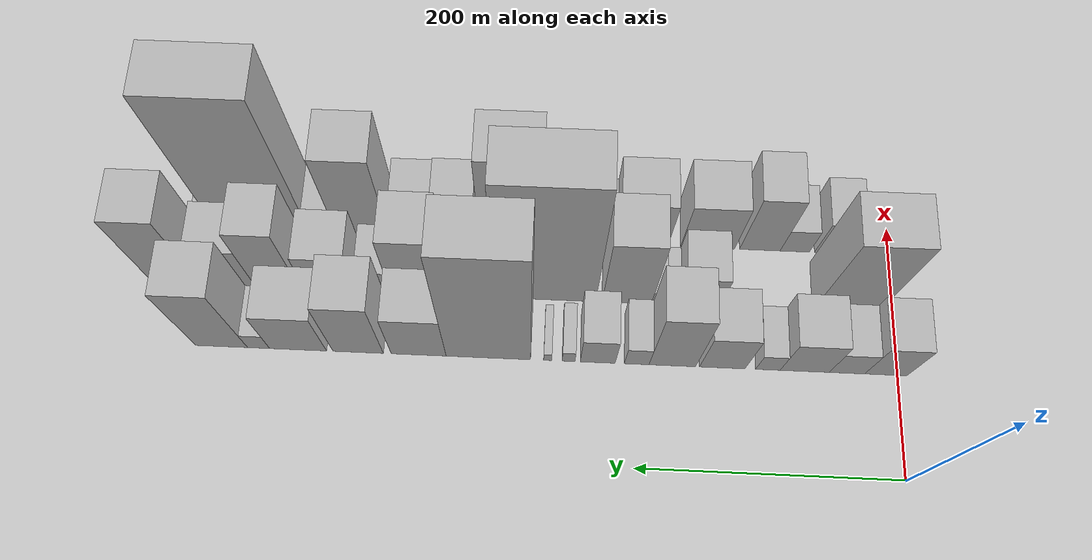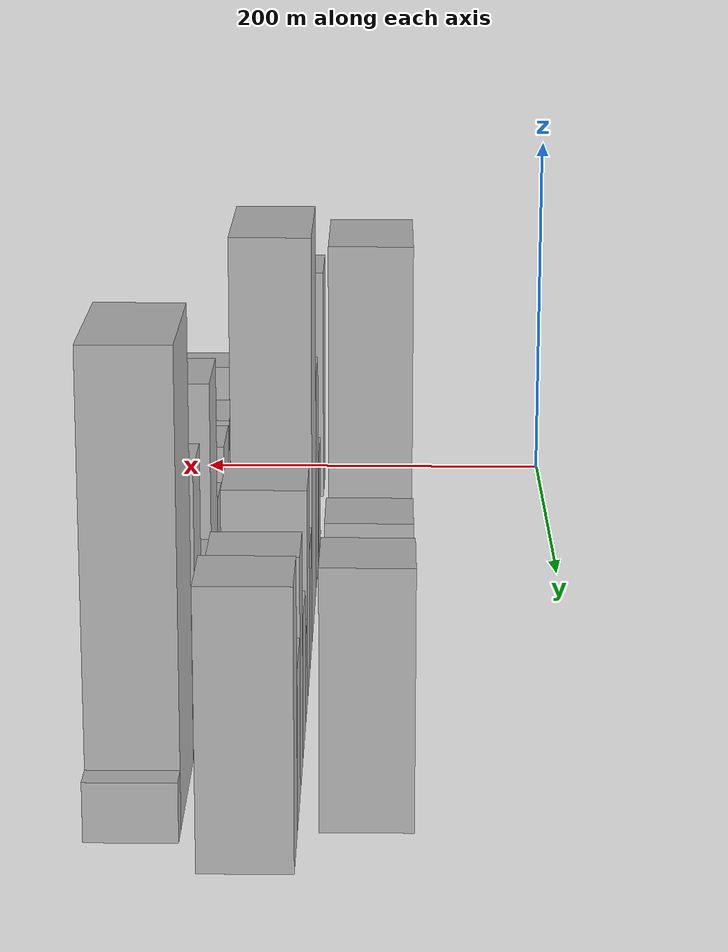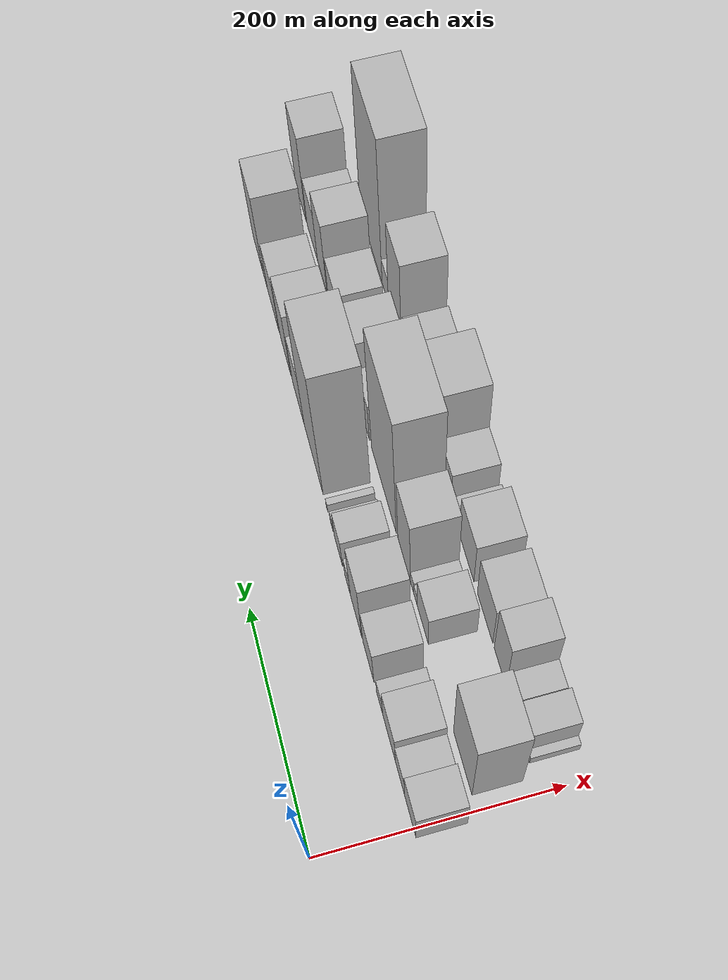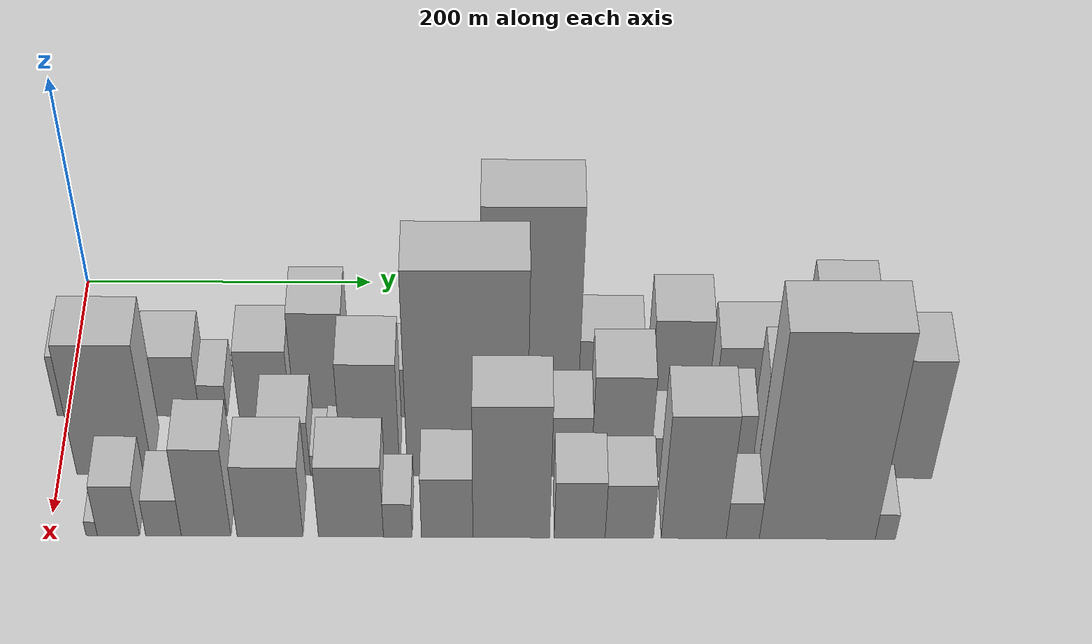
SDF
<sdf version="1.6">
 <world name="default">
  <model name="building_15">
   <static>1</static>
   <pose>100.0000 9.0524 0 0.000000 0.000000 0.000000</pose>
   <link name="link">
    <pose>0 0 31.50 0 0 0</pose>
    <collision name="collision"><geometry><box><size>40.0000 32.1481 63.0000</size></box></geometry></collision>
    <visual name="visual">
     <cast_shadows>0</cast_shadows>
     <geometry><box><size>40.0000 32.1481 63.0000</size></box></geometry>
     <material>
      <script>
       <uri>model://HANNAS_wall/materials/scripts</uri>
       <uri>model://HANNAS_wall/materials/textures</uri>
       <name>vrc/HANNAS_wall</name>
      </script>
     </material>
    </visual>
   </link>
  </model>
  <model name="building_16">
   <static>1</static>
   <pose>100.0000 38.5215 0 0.000000 0.000000 0.000000</pose>
   <link name="link">
    <pose>0 0 22.50 0 0 0</pose>
    <collision name="collision"><geometry><box><size>40.0000 26.7901 45.0000</size></box></geometry></collision>
    <visual name="visual">
     <cast_shadows>0</cast_shadows>
     <geometry><box><size>40.0000 26.7901 45.0000</size></box></geometry>
     <material>
      <script>
       <uri>model://HANNAS_wall/materials/scripts</uri>
       <uri>model://HANNAS_wall/materials/textures</uri>
       <name>vrc/HANNAS_wall</name>
      </script>
     </material>
    </visual>
   </link>
  </model>
  <model name="building_17">
   <static>1</static>
   <pose>100.0000 70.6206 0 0.000000 0.000000 0.000000</pose>
   <link name="link">
    <pose>0 0 31.50 0 0 0</pose>
    <collision name="collision"><geometry><box><size>40.0000 37.4082 63.0000</size></box></geometry></collision>
    <visual name="visual">
     <cast_shadows>0</cast_shadows>
     <geometry><box><size>40.0000 37.4082 63.0000</size></box></geometry>
     <material>
      <script>
       <uri>model://HANNAS_wall/materials/scripts</uri>
       <uri>model://HANNAS_wall/materials/textures</uri>
       <name>vrc/HANNAS_wall</name>
      </script>
     </material>
    </visual>
   </link>
  </model>
  <model name="building_18">
   <static>1</static>
   <pose>100.0000 98.6573 0 0.000000 0.000000 0.000000</pose>
   <link name="link">
    <pose>0 0 16.50 0 0 0</pose>
    <collision name="collision"><geometry><box><size>40.0000 18.6651 33.0000</size></box></geometry></collision>
    <visual name="visual">
     <cast_shadows>0</cast_shadows>
     <geometry><box><size>40.0000 18.6651 33.0000</size></box></geometry>
     <material>
      <script>
       <uri>model://HANNAS_wall/materials/scripts</uri>
       <uri>model://HANNAS_wall/materials/textures</uri>
       <name>vrc/HANNAS_wall</name>
      </script>
     </material>
    </visual>
   </link>
  </model>
  <model name="building_19">
   <static>1</static>
   <pose>100.0000 133.3318 0 0.000000 0.000000 0.000000</pose>
   <link name="link">
    <pose>0 0 34.50 0 0 0</pose>
    <collision name="collision"><geometry><box><size>40.0000 34.6839 69.0000</size></box></geometry></collision>
    <visual name="visual">
     <cast_shadows>0</cast_shadows>
     <geometry><box><size>40.0000 34.6839 69.0000</size></box></geometry>
     <material>
      <script>
       <uri>model://HANNAS_wall/materials/scripts</uri>
       <uri>model://HANNAS_wall/materials/textures</uri>
       <name>vrc/HANNAS_wall</name>
      </script>
     </material>
    </visual>
   </link>
  </model>
  <model name="building_20">
   <static>1</static>
   <pose>100.0000 171.4548 0 0.000000 0.000000 0.000000</pose>
   <link name="link">
    <pose>0 0 54.00 0 0 0</pose>
    <collision name="collision"><geometry><box><size>40.0000 35.5620 108.0000</size></box></geometry></collision>
    <visual name="visual">
     <cast_shadows>0</cast_shadows>
     <geometry><box><size>40.0000 35.5620 108.0000</size></box></geometry>
     <material>
      <script>
       <uri>model://HANNAS_wall/materials/scripts</uri>
       <uri>model://HANNAS_wall/materials/textures</uri>
       <name>vrc/HANNAS_wall</name>
      </script>
     </material>
    </visual>
   </link>
  </model>
  <model name="building_21">
   <static>1</static>
   <pose>100.0000 198.6346 0 0.000000 0.000000 0.000000</pose>
   <link name="link">
    <pose>0 0 18.00 0 0 0</pose>
    <collision name="collision"><geometry><box><size>40.0000 18.7976 36.0000</size></box></geometry></collision>
    <visual name="visual">
     <cast_shadows>0</cast_shadows>
     <geometry><box><size>40.0000 18.7976 36.0000</size></box></geometry>
     <material>
      <script>
       <uri>model://HANNAS_wall/materials/scripts</uri>
       <uri>model://HANNAS_wall/materials/textures</uri>
       <name>vrc/HANNAS_wall</name>
      </script>
     </material>
    </visual>
   </link>
  </model>
  <model name="building_22">
   <static>1</static>
   <pose>100.0000 228.3697 0 0.000000 0.000000 0.000000</pose>
   <link name="link">
    <pose>0 0 25.50 0 0 0</pose>
    <collision name="collision"><geometry><box><size>40.0000 26.6725 51.0000</size></box></geometry></collision>
    <visual name="visual">
     <cast_shadows>0</cast_shadows>
     <geometry><box><size>40.0000 26.6725 51.0000</size></box></geometry>
     <material>
      <script>
       <uri>model://HANNAS_wall/materials/scripts</uri>
       <uri>model://HANNAS_wall/materials/textures</uri>
       <name>vrc/HANNAS_wall</name>
      </script>
     </material>
    </visual>
   </link>
  </model>
  <model name="building_23">
   <static>1</static>
   <pose>100.0000 250.6202 0 0.000000 0.000000 0.000000</pose>
   <link name="link">
    <pose>0 0 10.50 0 0 0</pose>
    <collision name="collision"><geometry><box><size>40.0000 9.8286 21.0000</size></box></geometry></collision>
    <visual name="visual">
     <cast_shadows>0</cast_shadows>
     <geometry><box><size>40.0000 9.8286 21.0000</size></box></geometry>
     <material>
      <script>
       <uri>model://HANNAS_wall/materials/scripts</uri>
       <uri>model://HANNAS_wall/materials/textures</uri>
       <name>vrc/HANNAS_wall</name>
      </script>
     </material>
    </visual>
   </link>
  </model>
  <model name="building_24">
   <static>1</static>
   <pose>100.0000 266.6115 0 0.000000 0.000000 0.000000</pose>
   <link name="link">
    <pose>0 0 7.50 0 0 0</pose>
    <collision name="collision"><geometry><box><size>40.0000 6.1540 15.0000</size></box></geometry></collision>
    <visual name="visual">
     <cast_shadows>0</cast_shadows>
     <geometry><box><size>40.0000 6.1540 15.0000</size></box></geometry>
     <material>
      <script>
       <uri>model://HANNAS_wall/materials/scripts</uri>
       <uri>model://HANNAS_wall/materials/textures</uri>
       <name>vrc/HANNAS_wall</name>
      </script>
     </material>
    </visual>
   </link>
  </model>
  <model name="building_25">
   <static>1</static>
   <pose>100.0000 312.0021 0 0.000000 0.000000 0.000000</pose>
   <link name="link">
    <pose>0 0 105.00 0 0 0</pose>
    <collision name="collision"><geometry><box><size>40.0000 64.6272 210.0000</size></box></geometry></collision>
    <visual name="visual">
     <cast_shadows>0</cast_shadows>
     <geometry><box><size>40.0000 64.6272 210.0000</size></box></geometry>
     <material>
      <script>
       <uri>model://HANNAS_wall/materials/scripts</uri>
       <uri>model://HANNAS_wall/materials/textures</uri>
       <name>vrc/HANNAS_wall</name>
      </script>
     </material>
    </visual>
   </link>
  </model>
  <model name="building_26">
   <static>1</static>
   <pose>100.0000 365.3880 0 0.000000 0.000000 0.000000</pose>
   <link name="link">
    <pose>0 0 40.50 0 0 0</pose>
    <collision name="collision"><geometry><box><size>40.0000 42.1446 81.0000</size></box></geometry></collision>
    <visual name="visual">
     <cast_shadows>0</cast_shadows>
     <geometry><box><size>40.0000 42.1446 81.0000</size></box></geometry>
     <material>
      <script>
       <uri>model://HANNAS_wall/materials/scripts</uri>
       <uri>model://HANNAS_wall/materials/textures</uri>
       <name>vrc/HANNAS_wall</name>
      </script>
     </material>
    </visual>
   </link>
  </model>
  <model name="building_27">
   <static>1</static>
   <pose>100.0000 411.8133 0 0.000000 0.000000 0.000000</pose>
   <link name="link">
    <pose>0 0 51.00 0 0 0</pose>
    <collision name="collision"><geometry><box><size>40.0000 38.7061 102.0000</size></box></geometry></collision>
    <visual name="visual">
     <cast_shadows>0</cast_shadows>
     <geometry><box><size>40.0000 38.7061 102.0000</size></box></geometry>
     <material>
      <script>
       <uri>model://HANNAS_wall/materials/scripts</uri>
       <uri>model://HANNAS_wall/materials/textures</uri>
       <name>vrc/HANNAS_wall</name>
      </script>
     </material>
    </visual>
   </link>
  </model>
  <model name="building_28">
   <static>1</static>
   <pose>100.0000 458.0838 0 0.000000 0.000000 0.000000</pose>
   <link name="link">
    <pose>0 0 37.50 0 0 0</pose>
    <collision name="collision"><geometry><box><size>40.0000 43.8348 75.0000</size></box></geometry></collision>
    <visual name="visual">
     <cast_shadows>0</cast_shadows>
     <geometry><box><size>40.0000 43.8348 75.0000</size></box></geometry>
     <material>
      <script>
       <uri>model://HANNAS_wall/materials/scripts</uri>
       <uri>model://HANNAS_wall/materials/textures</uri>
       <name>vrc/HANNAS_wall</name>
      </script>
     </material>
    </visual>
   </link>
  </model>
  <model name="building_29">
   <static>1</static>
   <pose>100.0000 488.4881 0 0.000000 0.000000 0.000000</pose>
   <link name="link">
    <pose>0 0 15.00 0 0 0</pose>
    <collision name="collision"><geometry><box><size>40.0000 16.9738 30.0000</size></box></geometry></collision>
    <visual name="visual">
     <cast_shadows>0</cast_shadows>
     <geometry><box><size>40.0000 16.9738 30.0000</size></box></geometry>
     <material>
      <script>
       <uri>model://HANNAS_wall/materials/scripts</uri>
       <uri>model://HANNAS_wall/materials/textures</uri>
       <name>vrc/HANNAS_wall</name>
      </script>
     </material>
    </visual>
   </link>
  </model>
  <model name="building_30">
   <static>1</static>
   <pose>100.0000 516.9456 0 0.000000 0.000000 0.000000</pose>
   <link name="link">
    <pose>0 0 58.50 0 0 0</pose>
    <collision name="collision"><geometry><box><size>40.0000 39.9413 117.0000</size></box></geometry></collision>
    <visual name="visual">
     <cast_shadows>0</cast_shadows>
     <geometry><box><size>40.0000 39.9413 117.0000</size></box></geometry>
     <material>
      <script>
       <uri>model://HANNAS_wall/materials/scripts</uri>
       <uri>model://HANNAS_wall/materials/textures</uri>
       <name>vrc/HANNAS_wall</name>
      </script>
     </material>
    </visual>
   </link>
  </model>
  <model name="building_48">
   <static>1</static>
   <pose>149.0000 37.3845 0 0.000000 0.000000 0.000000</pose>
   <link name="link">
    <pose>0 0 67.50 0 0 0</pose>
    <collision name="collision"><geometry><box><size>40.0000 50.5159 135.0000</size></box></geometry></collision>
    <visual name="visual">
     <cast_shadows>0</cast_shadows>
     <geometry><box><size>40.0000 50.5159 135.0000</size></box></geometry>
     <material>
      <script>
       <uri>model://HANNAS_wall/materials/scripts</uri>
       <uri>model://HANNAS_wall/materials/textures</uri>
       <name>vrc/HANNAS_wall</name>
      </script>
     </material>
    </visual>
   </link>
  </model>
  <model name="building_49">
   <static>1</static>
   <pose>149.0000 150.6117 0 0.000000 0.000000 0.000000</pose>
   <link name="link">
    <pose>0 0 28.50 0 0 0</pose>
    <collision name="collision"><geometry><box><size>40.0000 32.6462 57.0000</size></box></geometry></collision>
    <visual name="visual">
     <cast_shadows>0</cast_shadows>
     <geometry><box><size>40.0000 32.6462 57.0000</size></box></geometry>
     <material>
      <script>
       <uri>model://HANNAS_wall/materials/scripts</uri>
       <uri>model://HANNAS_wall/materials/textures</uri>
       <name>vrc/HANNAS_wall</name>
      </script>
     </material>
    </visual>
   </link>
  </model>
  <model name="building_50">
   <static>1</static>
   <pose>149.0000 172.1413 0 0.000000 0.000000 0.000000</pose>
   <link name="link">
    <pose>0 0 10.50 0 0 0</pose>
    <collision name="collision"><geometry><box><size>40.0000 10.4131 21.0000</size></box></geometry></collision>
    <visual name="visual">
     <cast_shadows>0</cast_shadows>
     <geometry><box><size>40.0000 10.4131 21.0000</size></box></geometry>
     <material>
      <script>
       <uri>model://HANNAS_wall/materials/scripts</uri>
       <uri>model://HANNAS_wall/materials/textures</uri>
       <name>vrc/HANNAS_wall</name>
      </script>
     </material>
    </visual>
   </link>
  </model>
  <model name="building_51">
   <static>1</static>
   <pose>149.0000 182.4895 0 0.000000 0.000000 0.000000</pose>
   <link name="link">
    <pose>0 0 12.00 0 0 0</pose>
    <collision name="collision"><geometry><box><size>40.0000 10.2833 24.0000</size></box></geometry></collision>
    <visual name="visual">
     <cast_shadows>0</cast_shadows>
     <geometry><box><size>40.0000 10.2833 24.0000</size></box></geometry>
     <material>
      <script>
       <uri>model://HANNAS_wall/materials/scripts</uri>
       <uri>model://HANNAS_wall/materials/textures</uri>
       <name>vrc/HANNAS_wall</name>
      </script>
     </material>
    </visual>
   </link>
  </model>
  <model name="building_52">
   <static>1</static>
   <pose>149.0000 206.8425 0 0.000000 0.000000 0.000000</pose>
   <link name="link">
    <pose>0 0 58.50 0 0 0</pose>
    <collision name="collision"><geometry><box><size>40.0000 38.4228 117.0000</size></box></geometry></collision>
    <visual name="visual">
     <cast_shadows>0</cast_shadows>
     <geometry><box><size>40.0000 38.4228 117.0000</size></box></geometry>
     <material>
      <script>
       <uri>model://HANNAS_wall/materials/scripts</uri>
       <uri>model://HANNAS_wall/materials/textures</uri>
       <name>vrc/HANNAS_wall</name>
      </script>
     </material>
    </visual>
   </link>
  </model>
  <model name="building_53">
   <static>1</static>
   <pose>149.0000 270.4784 0 0.000000 0.000000 0.000000</pose>
   <link name="link">
    <pose>0 0 103.50 0 0 0</pose>
    <collision name="collision"><geometry><box><size>40.0000 78.8489 207.0000</size></box></geometry></collision>
    <visual name="visual">
     <cast_shadows>0</cast_shadows>
     <geometry><box><size>40.0000 78.8489 207.0000</size></box></geometry>
     <material>
      <script>
       <uri>model://HANNAS_wall/materials/scripts</uri>
       <uri>model://HANNAS_wall/materials/textures</uri>
       <name>vrc/HANNAS_wall</name>
      </script>
     </material>
    </visual>
   </link>
  </model>
  <model name="building_54">
   <static>1</static>
   <pose>149.0000 334.6148 0 0.000000 0.000000 0.000000</pose>
   <link name="link">
    <pose>0 0 31.50 0 0 0</pose>
    <collision name="collision"><geometry><box><size>40.0000 35.4239 63.0000</size></box></geometry></collision>
    <visual name="visual">
     <cast_shadows>0</cast_shadows>
     <geometry><box><size>40.0000 35.4239 63.0000</size></box></geometry>
     <material>
      <script>
       <uri>model://HANNAS_wall/materials/scripts</uri>
       <uri>model://HANNAS_wall/materials/textures</uri>
       <name>vrc/HANNAS_wall</name>
      </script>
     </material>
    </visual>
   </link>
  </model>
  <model name="building_55">
   <static>1</static>
   <pose>149.0000 371.7457 0 0.000000 0.000000 0.000000</pose>
   <link name="link">
    <pose>0 0 52.50 0 0 0</pose>
    <collision name="collision"><geometry><box><size>40.0000 38.8379 105.0000</size></box></geometry></collision>
    <visual name="visual">
     <cast_shadows>0</cast_shadows>
     <geometry><box><size>40.0000 38.8379 105.0000</size></box></geometry>
     <material>
      <script>
       <uri>model://HANNAS_wall/materials/scripts</uri>
       <uri>model://HANNAS_wall/materials/textures</uri>
       <name>vrc/HANNAS_wall</name>
      </script>
     </material>
    </visual>
   </link>
  </model>
  <model name="building_56">
   <static>1</static>
   <pose>149.0000 403.0981 0 0.000000 0.000000 0.000000</pose>
   <link name="link">
    <pose>0 0 21.00 0 0 0</pose>
    <collision name="collision"><geometry><box><size>40.0000 23.8670 42.0000</size></box></geometry></collision>
    <visual name="visual">
     <cast_shadows>0</cast_shadows>
     <geometry><box><size>40.0000 23.8670 42.0000</size></box></geometry>
     <material>
      <script>
       <uri>model://HANNAS_wall/materials/scripts</uri>
       <uri>model://HANNAS_wall/materials/textures</uri>
       <name>vrc/HANNAS_wall</name>
      </script>
     </material>
    </visual>
   </link>
  </model>
  <model name="building_57">
   <static>1</static>
   <pose>149.0000 438.5273 0 0.000000 0.000000 0.000000</pose>
   <link name="link">
    <pose>0 0 33.00 0 0 0</pose>
    <collision name="collision"><geometry><box><size>40.0000 38.9914 66.0000</size></box></geometry></collision>
    <visual name="visual">
     <cast_shadows>0</cast_shadows>
     <geometry><box><size>40.0000 38.9914 66.0000</size></box></geometry>
     <material>
      <script>
       <uri>model://HANNAS_wall/materials/scripts</uri>
       <uri>model://HANNAS_wall/materials/textures</uri>
       <name>vrc/HANNAS_wall</name>
      </script>
     </material>
    </visual>
   </link>
  </model>
  <model name="building_58">
   <static>1</static>
   <pose>149.0000 479.4361 0 0.000000 0.000000 0.000000</pose>
   <link name="link">
    <pose>0 0 54.00 0 0 0</pose>
    <collision name="collision"><geometry><box><size>40.0000 34.8263 108.0000</size></box></geometry></collision>
    <visual name="visual">
     <cast_shadows>0</cast_shadows>
     <geometry><box><size>40.0000 34.8263 108.0000</size></box></geometry>
     <material>
      <script>
       <uri>model://HANNAS_wall/materials/scripts</uri>
       <uri>model://HANNAS_wall/materials/textures</uri>
       <name>vrc/HANNAS_wall</name>
      </script>
     </material>
    </visual>
   </link>
  </model>
  <model name="building_59">
   <static>1</static>
   <pose>149.0000 516.1819 0 0.000000 0.000000 0.000000</pose>
   <link name="link">
    <pose>0 0 36.00 0 0 0</pose>
    <collision name="collision"><geometry><box><size>40.0000 38.6653 72.0000</size></box></geometry></collision>
    <visual name="visual">
     <cast_shadows>0</cast_shadows>
     <geometry><box><size>40.0000 38.6653 72.0000</size></box></geometry>
     <material>
      <script>
       <uri>model://HANNAS_wall/materials/scripts</uri>
       <uri>model://HANNAS_wall/materials/textures</uri>
       <name>vrc/HANNAS_wall</name>
      </script>
     </material>
    </visual>
   </link>
  </model>
  <model name="building_60">
   <static>1</static>
   <pose>149.0000 558.6370 0 0.000000 0.000000 0.000000</pose>
   <link name="link">
    <pose>0 0 61.50 0 0 0</pose>
    <collision name="collision"><geometry><box><size>40.0000 38.2450 123.0000</size></box></geometry></collision>
    <visual name="visual">
     <cast_shadows>0</cast_shadows>
     <geometry><box><size>40.0000 38.2450 123.0000</size></box></geometry>
     <material>
      <script>
       <uri>model://HANNAS_wall/materials/scripts</uri>
       <uri>model://HANNAS_wall/materials/textures</uri>
       <name>vrc/HANNAS_wall</name>
      </script>
     </material>
    </visual>
   </link>
  </model>
  <model name="building_74">
   <static>1</static>
   <pose>198.0000 27.3871 0 0.000000 0.000000 0.000000</pose>
   <link name="link">
    <pose>0 0 7.50 0 0 0</pose>
    <collision name="collision"><geometry><box><size>40.0000 7.3352 15.0000</size></box></geometry></collision>
    <visual name="visual">
     <cast_shadows>0</cast_shadows>
     <geometry><box><size>40.0000 7.3352 15.0000</size></box></geometry>
     <material>
      <script>
       <uri>model://HANNAS_wall/materials/scripts</uri>
       <uri>model://HANNAS_wall/materials/textures</uri>
       <name>vrc/HANNAS_wall</name>
      </script>
     </material>
    </visual>
   </link>
  </model>
  <model name="building_75">
   <static>1</static>
   <pose>198.0000 44.7673 0 0.000000 0.000000 0.000000</pose>
   <link name="link">
    <pose>0 0 27.00 0 0 0</pose>
    <collision name="collision"><geometry><box><size>40.0000 27.4253 54.0000</size></box></geometry></collision>
    <visual name="visual">
     <cast_shadows>0</cast_shadows>
     <geometry><box><size>40.0000 27.4253 54.0000</size></box></geometry>
     <material>
      <script>
       <uri>model://HANNAS_wall/materials/scripts</uri>
       <uri>model://HANNAS_wall/materials/textures</uri>
       <name>vrc/HANNAS_wall</name>
      </script>
     </material>
    </visual>
   </link>
  </model>
  <model name="building_76">
   <static>1</static>
   <pose>198.0000 74.0511 0 0.000000 0.000000 0.000000</pose>
   <link name="link">
    <pose>0 0 19.50 0 0 0</pose>
    <collision name="collision"><geometry><box><size>40.0000 23.1424 39.0000</size></box></geometry></collision>
    <visual name="visual">
     <cast_shadows>0</cast_shadows>
     <geometry><box><size>40.0000 23.1424 39.0000</size></box></geometry>
     <material>
      <script>
       <uri>model://HANNAS_wall/materials/scripts</uri>
       <uri>model://HANNAS_wall/materials/textures</uri>
       <name>vrc/HANNAS_wall</name>
      </script>
     </material>
    </visual>
   </link>
  </model>
  <model name="building_77">
   <static>1</static>
   <pose>198.0000 101.7412 0 0.000000 0.000000 0.000000</pose>
   <link name="link">
    <pose>0 0 46.50 0 0 0</pose>
    <collision name="collision"><geometry><box><size>40.0000 32.2377 93.0000</size></box></geometry></collision>
    <visual name="visual">
     <cast_shadows>0</cast_shadows>
     <geometry><box><size>40.0000 32.2377 93.0000</size></box></geometry>
     <material>
      <script>
       <uri>model://HANNAS_wall/materials/scripts</uri>
       <uri>model://HANNAS_wall/materials/textures</uri>
       <name>vrc/HANNAS_wall</name>
      </script>
     </material>
    </visual>
   </link>
  </model>
  <model name="building_78">
   <static>1</static>
   <pose>198.0000 143.2325 0 0.000000 0.000000 0.000000</pose>
   <link name="link">
    <pose>0 0 37.50 0 0 0</pose>
    <collision name="collision"><geometry><box><size>40.0000 42.7450 75.0000</size></box></geometry></collision>
    <visual name="visual">
     <cast_shadows>0</cast_shadows>
     <geometry><box><size>40.0000 42.7450 75.0000</size></box></geometry>
     <material>
      <script>
       <uri>model://HANNAS_wall/materials/scripts</uri>
       <uri>model://HANNAS_wall/materials/textures</uri>
       <name>vrc/HANNAS_wall</name>
      </script>
     </material>
    </visual>
   </link>
  </model>
  <model name="building_79">
   <static>1</static>
   <pose>198.0000 195.7150 0 0.000000 0.000000 0.000000</pose>
   <link name="link">
    <pose>0 0 37.50 0 0 0</pose>
    <collision name="collision"><geometry><box><size>40.0000 42.2200 75.0000</size></box></geometry></collision>
    <visual name="visual">
     <cast_shadows>0</cast_shadows>
     <geometry><box><size>40.0000 42.2200 75.0000</size></box></geometry>
     <material>
      <script>
       <uri>model://HANNAS_wall/materials/scripts</uri>
       <uri>model://HANNAS_wall/materials/textures</uri>
       <name>vrc/HANNAS_wall</name>
      </script>
     </material>
    </visual>
   </link>
  </model>
  <model name="building_80">
   <static>1</static>
   <pose>198.0000 226.1357 0 0.000000 0.000000 0.000000</pose>
   <link name="link">
    <pose>0 0 18.00 0 0 0</pose>
    <collision name="collision"><geometry><box><size>40.0000 18.6213 36.0000</size></box></geometry></collision>
    <visual name="visual">
     <cast_shadows>0</cast_shadows>
     <geometry><box><size>40.0000 18.6213 36.0000</size></box></geometry>
     <material>
      <script>
       <uri>model://HANNAS_wall/materials/scripts</uri>
       <uri>model://HANNAS_wall/materials/textures</uri>
       <name>vrc/HANNAS_wall</name>
      </script>
     </material>
    </visual>
   </link>
  </model>
  <model name="building_81">
   <static>1</static>
   <pose>198.0000 258.1320 0 0.000000 0.000000 0.000000</pose>
   <link name="link">
    <pose>0 0 31.50 0 0 0</pose>
    <collision name="collision"><geometry><box><size>40.0000 33.3714 63.0000</size></box></geometry></collision>
    <visual name="visual">
     <cast_shadows>0</cast_shadows>
     <geometry><box><size>40.0000 33.3714 63.0000</size></box></geometry>
     <material>
      <script>
       <uri>model://HANNAS_wall/materials/scripts</uri>
       <uri>model://HANNAS_wall/materials/textures</uri>
       <name>vrc/HANNAS_wall</name>
      </script>
     </material>
    </visual>
   </link>
  </model>
  <model name="building_82">
   <static>1</static>
   <pose>198.0000 299.6556 0 0.000000 0.000000 0.000000</pose>
   <link name="link">
    <pose>0 0 69.00 0 0 0</pose>
    <collision name="collision"><geometry><box><size>40.0000 49.6757 138.0000</size></box></geometry></collision>
    <visual name="visual">
     <cast_shadows>0</cast_shadows>
     <geometry><box><size>40.0000 49.6757 138.0000</size></box></geometry>
     <material>
      <script>
       <uri>model://HANNAS_wall/materials/scripts</uri>
       <uri>model://HANNAS_wall/materials/textures</uri>
       <name>vrc/HANNAS_wall</name>
      </script>
     </material>
    </visual>
   </link>
  </model>
  <model name="building_83">
   <static>1</static>
   <pose>198.0000 344.0142 0 0.000000 0.000000 0.000000</pose>
   <link name="link">
    <pose>0 0 30.00 0 0 0</pose>
    <collision name="collision"><geometry><box><size>40.0000 33.0414 60.0000</size></box></geometry></collision>
    <visual name="visual">
     <cast_shadows>0</cast_shadows>
     <geometry><box><size>40.0000 33.0414 60.0000</size></box></geometry>
     <material>
      <script>
       <uri>model://HANNAS_wall/materials/scripts</uri>
       <uri>model://HANNAS_wall/materials/textures</uri>
       <name>vrc/HANNAS_wall</name>
      </script>
     </material>
    </visual>
   </link>
  </model>
  <model name="building_84">
   <static>1</static>
   <pose>198.0000 376.2070 0 0.000000 0.000000 0.000000</pose>
   <link name="link">
    <pose>0 0 28.50 0 0 0</pose>
    <collision name="collision"><geometry><box><size>40.0000 31.3443 57.0000</size></box></geometry></collision>
    <visual name="visual">
     <cast_shadows>0</cast_shadows>
     <geometry><box><size>40.0000 31.3443 57.0000</size></box></geometry>
     <material>
      <script>
       <uri>model://HANNAS_wall/materials/scripts</uri>
       <uri>model://HANNAS_wall/materials/textures</uri>
       <name>vrc/HANNAS_wall</name>
      </script>
     </material>
    </visual>
   </link>
  </model>
  <model name="building_85">
   <static>1</static>
   <pose>198.0000 417.9450 0 0.000000 0.000000 0.000000</pose>
   <link name="link">
    <pose>0 0 64.50 0 0 0</pose>
    <collision name="collision"><geometry><box><size>40.0000 42.1315 129.0000</size></box></geometry></collision>
    <visual name="visual">
     <cast_shadows>0</cast_shadows>
     <geometry><box><size>40.0000 42.1315 129.0000</size></box></geometry>
     <material>
      <script>
       <uri>model://HANNAS_wall/materials/scripts</uri>
       <uri>model://HANNAS_wall/materials/textures</uri>
       <name>vrc/HANNAS_wall</name>
      </script>
     </material>
    </visual>
   </link>
  </model>
  <model name="building_86">
   <static>1</static>
   <pose>198.0000 449.7388 0 0.000000 0.000000 0.000000</pose>
   <link name="link">
    <pose>0 0 19.50 0 0 0</pose>
    <collision name="collision"><geometry><box><size>40.0000 21.4561 39.0000</size></box></geometry></collision>
    <visual name="visual">
     <cast_shadows>0</cast_shadows>
     <geometry><box><size>40.0000 21.4561 39.0000</size></box></geometry>
     <material>
      <script>
       <uri>model://HANNAS_wall/materials/scripts</uri>
       <uri>model://HANNAS_wall/materials/textures</uri>
       <name>vrc/HANNAS_wall</name>
      </script>
     </material>
    </visual>
   </link>
  </model>
  <model name="building_87">
   <static>1</static>
   <pose>198.0000 498.0518 0 0.000000 0.000000 0.000000</pose>
   <link name="link">
    <pose>0 0 105.00 0 0 0</pose>
    <collision name="collision"><geometry><box><size>40.0000 75.1699 210.0000</size></box></geometry></collision>
    <visual name="visual">
     <cast_shadows>0</cast_shadows>
     <geometry><box><size>40.0000 75.1699 210.0000</size></box></geometry>
     <material>
      <script>
       <uri>model://HANNAS_wall/materials/scripts</uri>
       <uri>model://HANNAS_wall/materials/textures</uri>
       <name>vrc/HANNAS_wall</name>
      </script>
     </material>
    </visual>
   </link>
  </model>
  <model name="building_88">
   <static>1</static>
   <pose>198.0000 542.1515 0 0.000000 0.000000 0.000000</pose>
   <link name="link">
    <pose>0 0 13.50 0 0 0</pose>
    <collision name="collision"><geometry><box><size>40.0000 13.0295 27.0000</size></box></geometry></collision>
    <visual name="visual">
     <cast_shadows>0</cast_shadows>
     <geometry><box><size>40.0000 13.0295 27.0000</size></box></geometry>
     <material>
      <script>
       <uri>model://HANNAS_wall/materials/scripts</uri>
       <uri>model://HANNAS_wall/materials/textures</uri>
       <name>vrc/HANNAS_wall</name>
      </script>
     </material>
    </visual>
   </link>
  </model>
 </world>
</sdf>
